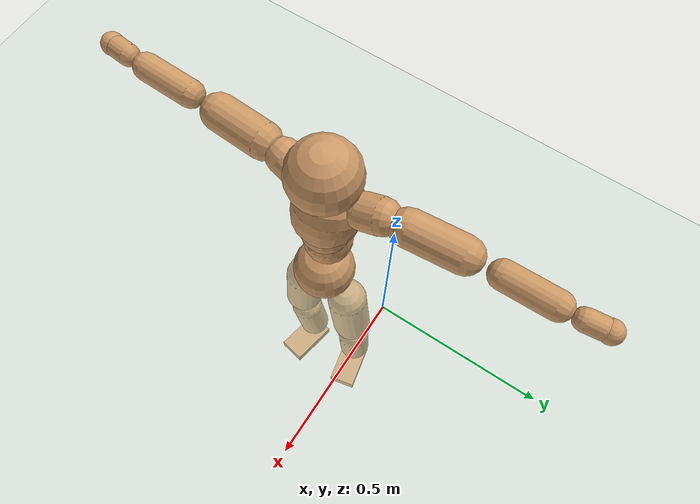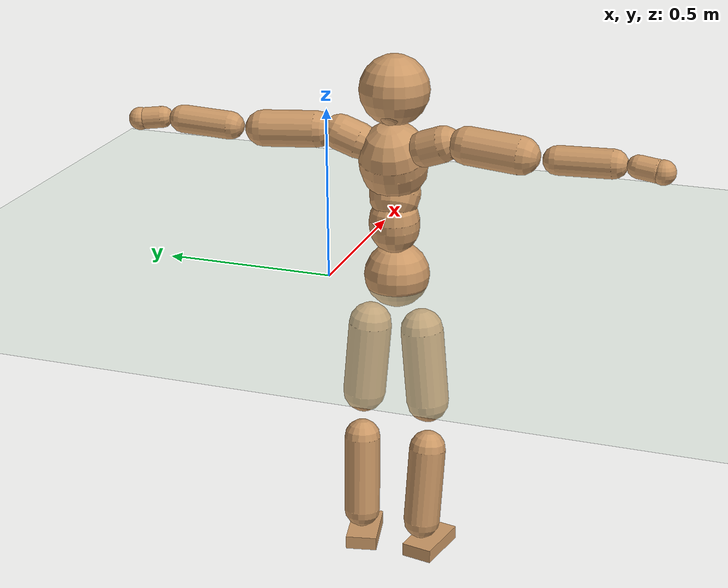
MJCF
<mujoco model="humanoid">
  <compiler coordinate="local"/>
  <default>
    <joint damping="0.0" armature="0.01" stiffness="0.0" limited="true"/>
    <geom conaffinity="1" condim="3" contype="7" margin="0.001" rgba="0.8 0.6 .4 1"/>
  </default>
  <asset>
    <texture type="skybox" builtin="gradient" rgb1=".4 .5 .6" rgb2="0 0 0" width="100" height="100"/>
    <texture builtin="flat" height="1278" mark="cross" markrgb="1 1 1" name="texgeom" random="0.01" rgb1="0.8 0.6 0.4" rgb2="0.8 0.6 0.4" type="cube" width="127"/>
    <texture builtin="checker" height="100" name="texplane" rgb1="0 0 0" rgb2="0.8 0.8 0.8" type="2d" width="100"/>
    <material name="MatPlane" reflectance="0.5" shininess="1" specular="1" texrepeat="60 60" texture="texplane"/>
    <material name="geom" texture="texgeom" texuniform="true"/>
  </asset>
  <worldbody>
    <light cutoff="100" diffuse="1 1 1" dir="-0 0 -1.3" directional="true" exponent="1" pos="0 0 1.3" specular=".1 .1 .1"/>
    <geom conaffinity="1" condim="3" name="floor" pos="0 0 0" rgba="0.8 0.9 0.8 1" size="100 100 .2" type="plane" material="MatPlane"/>
    <body name="Pelvis" pos="0.0009 -0.2075 0.0335">
      <freejoint name="Pelvis"/>
      <geom type="sphere" contype="1" conaffinity="1" density="500" size="0.0940" pos="0.0000 0.0000 0.0000" name="Pelvis"/>
      <body name="L_Hip" pos="-0.0052 0.0729 -0.0884">
        <joint name="L_Hip_x" type="hinge" pos="0 0 0" axis="1 0 0" stiffness="800" damping="80" armature="0.02" range="-180.0000 180.0000"/>
        <joint name="L_Hip_y" type="hinge" pos="0 0 0" axis="0 1 0" stiffness="800" damping="80" armature="0.02" range="-180.0000 180.0000"/>
        <joint name="L_Hip_z" type="hinge" pos="0 0 0" axis="0 0 1" stiffness="800" damping="80" armature="0.02" range="-180.0000 180.0000"/>
        <geom type="capsule" contype="1" conaffinity="1" density="500" fromto="-0.0016 0.0060 -0.0724 -0.0065 0.0239 -0.2895" size="0.0624" name="L_Hip"/>
        <body name="L_Knee" pos="-0.0081 0.0298 -0.3619">
          <joint name="L_Knee_x" type="hinge" pos="0 0 0" axis="1 0 0" stiffness="800" damping="80" armature="0.02" range="-180.0000 180.0000"/>
          <joint name="L_Knee_y" type="hinge" pos="0 0 0" axis="0 1 0" stiffness="800" damping="80" armature="0.02" range="-180.0000 180.0000"/>
          <joint name="L_Knee_z" type="hinge" pos="0 0 0" axis="0 0 1" stiffness="800" damping="80" armature="0.02" range="-180.0000 180.0000"/>
          <geom type="capsule" contype="1" conaffinity="1" density="500" fromto="-0.0087 -0.0023 -0.0763 -0.0347 -0.0091 -0.3052" size="0.0536" name="L_Knee"/>
          <body name="L_Ankle" pos="-0.0434 -0.0114 -0.3815">
            <joint name="L_Ankle_x" type="hinge" pos="0 0 0" axis="1 0 0" stiffness="800" damping="80" armature="0.02" range="-180.0000 180.0000"/>
            <joint name="L_Ankle_y" type="hinge" pos="0 0 0" axis="0 1 0" stiffness="800" damping="80" armature="0.02" range="-180.0000 180.0000"/>
            <joint name="L_Ankle_z" type="hinge" pos="0 0 0" axis="0 0 1" stiffness="800" damping="80" armature="0.02" range="-180.0000 180.0000"/>
            <geom type="box" contype="1" conaffinity="1" density="500" pos="0.0577 0.0118 -0.0274" size="0.0835 0.0459 0.02" quat="0.9949 0.0000 0.0000 0.1008" name="L_Ankle"/>
            <body name="L_Toe" pos="0.1155 0.0236 -0.0548">
              <joint name="L_Toe_x" type="hinge" pos="0 0 0" axis="1 0 0" stiffness="500" damping="50" armature="0.02" range="-180.0000 180.0000"/>
              <joint name="L_Toe_y" type="hinge" pos="0 0 0" axis="0 1 0" stiffness="500" damping="50" armature="0.02" range="-180.0000 180.0000"/>
              <joint name="L_Toe_z" type="hinge" pos="0 0 0" axis="0 0 1" stiffness="500" damping="50" armature="0.02" range="-180.0000 180.0000"/>
              <geom type="box" contype="1" conaffinity="1" density="500" pos="0.0000 0.0000 0.0269" size="0.0009 0.0023 0.001" quat="0.9942 0.0000 0.0000 0.1072" name="L_Toe"/>
            </body>
          </body>
        </body>
      </body>
      <body name="R_Hip" pos="-0.0024 -0.0705 -0.0876">
        <joint name="R_Hip_x" type="hinge" pos="0 0 0" axis="1 0 0" stiffness="800" damping="80" armature="0.02" range="-180.0000 180.0000"/>
        <joint name="R_Hip_y" type="hinge" pos="0 0 0" axis="0 1 0" stiffness="800" damping="80" armature="0.02" range="-180.0000 180.0000"/>
        <joint name="R_Hip_z" type="hinge" pos="0 0 0" axis="0 0 1" stiffness="800" damping="80" armature="0.02" range="-180.0000 180.0000"/>
        <geom type="capsule" contype="1" conaffinity="1" density="500" fromto="-0.0020 -0.0070 -0.0736 -0.0081 -0.0279 -0.2946" size="0.0617" name="R_Hip"/>
        <body name="R_Knee" pos="-0.0102 -0.0349 -0.3682">
          <joint name="R_Knee_x" type="hinge" pos="0 0 0" axis="1 0 0" stiffness="800" damping="80" armature="0.02" range="-180.0000 180.0000"/>
          <joint name="R_Knee_y" type="hinge" pos="0 0 0" axis="0 1 0" stiffness="800" damping="80" armature="0.02" range="-180.0000 180.0000"/>
          <joint name="R_Knee_z" type="hinge" pos="0 0 0" axis="0 0 1" stiffness="800" damping="80" armature="0.02" range="-180.0000 180.0000"/>
          <geom type="capsule" contype="1" conaffinity="1" density="500" fromto="-0.0085 0.0028 -0.0765 -0.0340 0.0110 -0.3062" size="0.0539" name="R_Knee"/>
          <body name="R_Ankle" pos="-0.0424 0.0138 -0.3827">
            <joint name="R_Ankle_x" type="hinge" pos="0 0 0" axis="1 0 0" stiffness="800" damping="80" armature="0.02" range="-180.0000 180.0000"/>
            <joint name="R_Ankle_y" type="hinge" pos="0 0 0" axis="0 1 0" stiffness="800" damping="80" armature="0.02" range="-180.0000 180.0000"/>
            <joint name="R_Ankle_z" type="hinge" pos="0 0 0" axis="0 0 1" stiffness="800" damping="80" armature="0.02" range="-180.0000 180.0000"/>
            <geom type="box" contype="1" conaffinity="1" density="500" pos="0.0595 -0.0115 -0.0230" size="0.0841 0.0464 0.02" quat="0.9955 0.0000 0.0000 -0.0949" name="R_Ankle"/>
            <body name="R_Toe" pos="0.1191 -0.0229 -0.046">
              <joint name="R_Toe_x" type="hinge" pos="0 0 0" axis="1 0 0" stiffness="500" damping="50" armature="0.02" range="-180.0000 180.0000"/>
              <joint name="R_Toe_y" type="hinge" pos="0 0 0" axis="0 1 0" stiffness="500" damping="50" armature="0.02" range="-180.0000 180.0000"/>
              <joint name="R_Toe_z" type="hinge" pos="0 0 0" axis="0 0 1" stiffness="500" damping="50" armature="0.02" range="-180.0000 180.0000"/>
              <geom type="box" contype="1" conaffinity="1" density="500" pos="0.0000 0.0000 0.0247" size="0.0009 0.0023 0.0011" quat="0.9963 0.0000 0.0000 -0.0854" name="R_Toe"/>
            </body>
          </body>
        </body>
      </body>
      <body name="Torso" pos="-0.025 -0.0023 0.1018">
        <joint name="Torso_x" type="hinge" pos="0 0 0" axis="1 0 0" stiffness="1000" damping="100" armature="0.02" range="-180.0000 180.0000"/>
        <joint name="Torso_y" type="hinge" pos="0 0 0" axis="0 1 0" stiffness="1000" damping="100" armature="0.02" range="-180.0000 180.0000"/>
        <joint name="Torso_z" type="hinge" pos="0 0 0" axis="0 0 1" stiffness="1000" damping="100" armature="0.02" range="-180.0000 180.0000"/>
        <geom type="capsule" contype="1" conaffinity="1" density="500" fromto="-0.0019 0.0015 0.0727 -0.0012 0.0010 0.0484" size="0.0716" name="Torso"/>
        <body name="Spine" pos="-0.0031 0.0026 0.1211">
          <joint name="Spine_x" type="hinge" pos="0 0 0" axis="1 0 0" stiffness="1000" damping="100" armature="0.02" range="-180.0000 180.0000"/>
          <joint name="Spine_y" type="hinge" pos="0 0 0" axis="0 1 0" stiffness="1000" damping="100" armature="0.02" range="-180.0000 180.0000"/>
          <joint name="Spine_z" type="hinge" pos="0 0 0" axis="0 0 1" stiffness="1000" damping="100" armature="0.02" range="-180.0000 180.0000"/>
          <geom type="capsule" contype="1" conaffinity="1" density="500" fromto="0.0160 0.0012 0.0288 0.0107 0.0008 0.0192" size="0.0729" name="Spine"/>
          <body name="Chest" pos="0.0267 0.002 0.0481">
            <joint name="Chest_x" type="hinge" pos="0 0 0" axis="1 0 0" stiffness="1000" damping="100" armature="0.02" range="-180.0000 180.0000"/>
            <joint name="Chest_y" type="hinge" pos="0 0 0" axis="0 1 0" stiffness="1000" damping="100" armature="0.02" range="-180.0000 180.0000"/>
            <joint name="Chest_z" type="hinge" pos="0 0 0" axis="0 0 1" stiffness="1000" damping="100" armature="0.02" range="-180.0000 180.0000"/>
            <geom type="capsule" contype="1" conaffinity="1" density="500" fromto="-0.0279 -0.0004 0.0901 -0.0186 -0.0003 0.0601" size="0.0972" name="Chest"/>
            <body name="Neck" pos="-0.0545 -0.0002 0.2113">
              <joint name="Neck_x" type="hinge" pos="0 0 0" axis="1 0 0" stiffness="500" damping="50" armature="0.02" range="-180.0000 180.0000"/>
              <joint name="Neck_y" type="hinge" pos="0 0 0" axis="0 1 0" stiffness="500" damping="50" armature="0.02" range="-180.0000 180.0000"/>
              <joint name="Neck_z" type="hinge" pos="0 0 0" axis="0 0 1" stiffness="500" damping="50" armature="0.02" range="-180.0000 180.0000"/>
              <geom type="capsule" contype="1" conaffinity="1" density="500" fromto="0.0099 0.0008 0.0117 0.0396 0.0032 0.0468" size="0.0413" name="Neck"/>
              <body name="Head" pos="0.0495 0.004 0.0585">
                <joint name="Head_x" type="hinge" pos="0 0 0" axis="1 0 0" stiffness="500" damping="50" armature="0.02" range="-180.0000 180.0000"/>
                <joint name="Head_y" type="hinge" pos="0 0 0" axis="0 1 0" stiffness="500" damping="50" armature="0.02" range="-180.0000 180.0000"/>
                <joint name="Head_z" type="hinge" pos="0 0 0" axis="0 0 1" stiffness="500" damping="50" armature="0.02" range="-180.0000 180.0000"/>
                <geom type="sphere" contype="1" conaffinity="1" density="500" size="0.0987" pos="0.0000 0.0000 0.0000" name="Head"/>
              </body>
            </body>
            <body name="L_Thorax" pos="-0.0395 0.077 0.1209">
              <joint name="L_Thorax_x" type="hinge" pos="0 0 0" axis="1 0 0" stiffness="500" damping="50" armature="0.02" range="-180.0000 180.0000"/>
              <joint name="L_Thorax_y" type="hinge" pos="0 0 0" axis="0 1 0" stiffness="500" damping="50" armature="0.02" range="-180.0000 180.0000"/>
              <joint name="L_Thorax_z" type="hinge" pos="0 0 0" axis="0 0 1" stiffness="500" damping="50" armature="0.02" range="-180.0000 180.0000"/>
              <geom type="capsule" contype="1" conaffinity="1" density="500" fromto="-0.0013 0.0174 0.0066 -0.0053 0.0697 0.0265" size="0.0509" name="L_Thorax"/>
              <body name="L_Shoulder" pos="-0.0067 0.0871 0.0331">
                <joint name="L_Shoulder_x" type="hinge" pos="0 0 0" axis="1 0 0" stiffness="500" damping="50" armature="0.02" range="-720.0000 720.0000"/>
                <joint name="L_Shoulder_y" type="hinge" pos="0 0 0" axis="0 1 0" stiffness="500" damping="50" armature="0.02" range="-720.0000 720.0000"/>
                <joint name="L_Shoulder_z" type="hinge" pos="0 0 0" axis="0 0 1" stiffness="500" damping="50" armature="0.02" range="-720.0000 720.0000"/>
                <geom type="capsule" contype="1" conaffinity="1" density="500" fromto="-0.0054 0.0504 -0.0023 -0.0214 0.2016 -0.0092" size="0.0514" name="L_Shoulder"/>
                <body name="L_Elbow" pos="-0.0268 0.252 -0.0115">
                  <joint name="L_Elbow_x" type="hinge" pos="0 0 0" axis="1 0 0" stiffness="500" damping="50" armature="0.02" range="-720.0000 720.0000"/>
                  <joint name="L_Elbow_y" type="hinge" pos="0 0 0" axis="0 1 0" stiffness="500" damping="50" armature="0.02" range="-720.0000 720.0000"/>
                  <joint name="L_Elbow_z" type="hinge" pos="0 0 0" axis="0 0 1" stiffness="500" damping="50" armature="0.02" range="-720.0000 720.0000"/>
                  <geom type="capsule" contype="1" conaffinity="1" density="500" fromto="0.0001 0.0480 0.0019 0.0004 0.1919 0.0076" size="0.0395" name="L_Elbow"/>
                  <body name="L_Wrist" pos="0.0005 0.2399 0.0094">
                    <joint name="L_Wrist_x" type="hinge" pos="0 0 0" axis="1 0 0" stiffness="300" damping="30" armature="0.02" range="-180.0000 180.0000"/>
                    <joint name="L_Wrist_y" type="hinge" pos="0 0 0" axis="0 1 0" stiffness="300" damping="30" armature="0.02" range="-180.0000 180.0000"/>
                    <joint name="L_Wrist_z" type="hinge" pos="0 0 0" axis="0 0 1" stiffness="300" damping="30" armature="0.02" range="-180.0000 180.0000"/>
                    <geom type="capsule" contype="1" conaffinity="1" density="500" fromto="-0.0027 0.0161 -0.0019 -0.0107 0.0646 -0.0078" size="0.0306" name="L_Wrist"/>
                    <body name="L_Hand" pos="-0.0134 0.0807 -0.0097">
                      <joint name="L_Hand_x" type="hinge" pos="0 0 0" axis="1 0 0" stiffness="300" damping="30" armature="0.02" range="-180.0000 180.0000"/>
                      <joint name="L_Hand_y" type="hinge" pos="0 0 0" axis="0 1 0" stiffness="300" damping="30" armature="0.02" range="-180.0000 180.0000"/>
                      <joint name="L_Hand_z" type="hinge" pos="0 0 0" axis="0 0 1" stiffness="300" damping="30" armature="0.02" range="-180.0000 180.0000"/>
                      <geom type="sphere" contype="1" conaffinity="1" density="500" size="0.0325" pos="0.0000 0.0000 0.0000" name="L_Hand"/>
                    </body>
                  </body>
                </body>
              </body>
            </body>
            <body name="R_Thorax" pos="-0.0454 -0.0789 0.1182">
              <joint name="R_Thorax_x" type="hinge" pos="0 0 0" axis="1 0 0" stiffness="500" damping="50" armature="0.02" range="-180.0000 180.0000"/>
              <joint name="R_Thorax_y" type="hinge" pos="0 0 0" axis="0 1 0" stiffness="500" damping="50" armature="0.02" range="-180.0000 180.0000"/>
              <joint name="R_Thorax_z" type="hinge" pos="0 0 0" axis="0 0 1" stiffness="500" damping="50" armature="0.02" range="-180.0000 180.0000"/>
              <geom type="capsule" contype="1" conaffinity="1" density="500" fromto="-0.0022 -0.0185 0.0069 -0.0086 -0.0739 0.0277" size="0.0503" name="R_Thorax"/>
              <body name="R_Shoulder" pos="-0.0108 -0.0924 0.0346">
                <joint name="R_Shoulder_x" type="hinge" pos="0 0 0" axis="1 0 0" stiffness="500" damping="50" armature="0.02" range="-720.0000 720.0000"/>
                <joint name="R_Shoulder_y" type="hinge" pos="0 0 0" axis="0 1 0" stiffness="500" damping="50" armature="0.02" range="-720.0000 720.0000"/>
                <joint name="R_Shoulder_z" type="hinge" pos="0 0 0" axis="0 0 1" stiffness="500" damping="50" armature="0.02" range="-720.0000 720.0000"/>
                <geom type="capsule" contype="1" conaffinity="1" density="500" fromto="-0.0041 -0.0503 -0.0029 -0.0164 -0.2012 -0.0114" size="0.053" name="R_Shoulder"/>
                <body name="R_Elbow" pos="-0.0204 -0.2515 -0.0143">
                  <joint name="R_Elbow_x" type="hinge" pos="0 0 0" axis="1 0 0" stiffness="500" damping="50" armature="0.02" range="-720.0000 720.0000"/>
                  <joint name="R_Elbow_y" type="hinge" pos="0 0 0" axis="0 1 0" stiffness="500" damping="50" armature="0.02" range="-720.0000 720.0000"/>
                  <joint name="R_Elbow_z" type="hinge" pos="0 0 0" axis="0 0 1" stiffness="500" damping="50" armature="0.02" range="-720.0000 720.0000"/>
                  <geom type="capsule" contype="1" conaffinity="1" density="500" fromto="-0.0006 -0.0499 0.0018 -0.0025 -0.1998 0.0074" size="0.0398" name="R_Elbow"/>
                  <body name="R_Wrist" pos="-0.0032 -0.2497 0.0092">
                    <joint name="R_Wrist_x" type="hinge" pos="0 0 0" axis="1 0 0" stiffness="300" damping="30" armature="0.02" range="-180.0000 180.0000"/>
                    <joint name="R_Wrist_y" type="hinge" pos="0 0 0" axis="0 1 0" stiffness="300" damping="30" armature="0.02" range="-180.0000 180.0000"/>
                    <joint name="R_Wrist_z" type="hinge" pos="0 0 0" axis="0 0 1" stiffness="300" damping="30" armature="0.02" range="-180.0000 180.0000"/>
                    <geom type="capsule" contype="1" conaffinity="1" density="500" fromto="-0.0022 -0.0166 -0.0015 -0.0087 -0.0665 -0.0060" size="0.0318" name="R_Wrist"/>
                    <body name="R_Hand" pos="-0.0108 -0.0831 -0.0075">
                      <joint name="R_Hand_x" type="hinge" pos="0 0 0" axis="1 0 0" stiffness="300" damping="30" armature="0.02" range="-180.0000 180.0000"/>
                      <joint name="R_Hand_y" type="hinge" pos="0 0 0" axis="0 1 0" stiffness="300" damping="30" armature="0.02" range="-180.0000 180.0000"/>
                      <joint name="R_Hand_z" type="hinge" pos="0 0 0" axis="0 0 1" stiffness="300" damping="30" armature="0.02" range="-180.0000 180.0000"/>
                      <geom type="sphere" contype="1" conaffinity="1" density="500" size="0.0334" pos="0.0000 0.0000 0.0000" name="R_Hand"/>
                    </body>
                  </body>
                </body>
              </body>
            </body>
          </body>
        </body>
      </body>
    </body>
  </worldbody>
  <actuator>
    <motor name="L_Hip_x" joint="L_Hip_x" gear="500"/>
    <motor name="L_Hip_y" joint="L_Hip_y" gear="500"/>
    <motor name="L_Hip_z" joint="L_Hip_z" gear="500"/>
    <motor name="L_Knee_x" joint="L_Knee_x" gear="500"/>
    <motor name="L_Knee_y" joint="L_Knee_y" gear="500"/>
    <motor name="L_Knee_z" joint="L_Knee_z" gear="500"/>
    <motor name="L_Ankle_x" joint="L_Ankle_x" gear="500"/>
    <motor name="L_Ankle_y" joint="L_Ankle_y" gear="500"/>
    <motor name="L_Ankle_z" joint="L_Ankle_z" gear="500"/>
    <motor name="L_Toe_x" joint="L_Toe_x" gear="500"/>
    <motor name="L_Toe_y" joint="L_Toe_y" gear="500"/>
    <motor name="L_Toe_z" joint="L_Toe_z" gear="500"/>
    <motor name="R_Hip_x" joint="R_Hip_x" gear="500"/>
    <motor name="R_Hip_y" joint="R_Hip_y" gear="500"/>
    <motor name="R_Hip_z" joint="R_Hip_z" gear="500"/>
    <motor name="R_Knee_x" joint="R_Knee_x" gear="500"/>
    <motor name="R_Knee_y" joint="R_Knee_y" gear="500"/>
    <motor name="R_Knee_z" joint="R_Knee_z" gear="500"/>
    <motor name="R_Ankle_x" joint="R_Ankle_x" gear="500"/>
    <motor name="R_Ankle_y" joint="R_Ankle_y" gear="500"/>
    <motor name="R_Ankle_z" joint="R_Ankle_z" gear="500"/>
    <motor name="R_Toe_x" joint="R_Toe_x" gear="500"/>
    <motor name="R_Toe_y" joint="R_Toe_y" gear="500"/>
    <motor name="R_Toe_z" joint="R_Toe_z" gear="500"/>
    <motor name="Torso_x" joint="Torso_x" gear="500"/>
    <motor name="Torso_y" joint="Torso_y" gear="500"/>
    <motor name="Torso_z" joint="Torso_z" gear="500"/>
    <motor name="Spine_x" joint="Spine_x" gear="500"/>
    <motor name="Spine_y" joint="Spine_y" gear="500"/>
    <motor name="Spine_z" joint="Spine_z" gear="500"/>
    <motor name="Chest_x" joint="Chest_x" gear="500"/>
    <motor name="Chest_y" joint="Chest_y" gear="500"/>
    <motor name="Chest_z" joint="Chest_z" gear="500"/>
    <motor name="Neck_x" joint="Neck_x" gear="500"/>
    <motor name="Neck_y" joint="Neck_y" gear="500"/>
    <motor name="Neck_z" joint="Neck_z" gear="500"/>
    <motor name="Head_x" joint="Head_x" gear="500"/>
    <motor name="Head_y" joint="Head_y" gear="500"/>
    <motor name="Head_z" joint="Head_z" gear="500"/>
    <motor name="L_Thorax_x" joint="L_Thorax_x" gear="500"/>
    <motor name="L_Thorax_y" joint="L_Thorax_y" gear="500"/>
    <motor name="L_Thorax_z" joint="L_Thorax_z" gear="500"/>
    <motor name="L_Shoulder_x" joint="L_Shoulder_x" gear="500"/>
    <motor name="L_Shoulder_y" joint="L_Shoulder_y" gear="500"/>
    <motor name="L_Shoulder_z" joint="L_Shoulder_z" gear="500"/>
    <motor name="L_Elbow_x" joint="L_Elbow_x" gear="500"/>
    <motor name="L_Elbow_y" joint="L_Elbow_y" gear="500"/>
    <motor name="L_Elbow_z" joint="L_Elbow_z" gear="500"/>
    <motor name="L_Wrist_x" joint="L_Wrist_x" gear="500"/>
    <motor name="L_Wrist_y" joint="L_Wrist_y" gear="500"/>
    <motor name="L_Wrist_z" joint="L_Wrist_z" gear="500"/>
    <motor name="L_Hand_x" joint="L_Hand_x" gear="500"/>
    <motor name="L_Hand_y" joint="L_Hand_y" gear="500"/>
    <motor name="L_Hand_z" joint="L_Hand_z" gear="500"/>
    <motor name="R_Thorax_x" joint="R_Thorax_x" gear="500"/>
    <motor name="R_Thorax_y" joint="R_Thorax_y" gear="500"/>
    <motor name="R_Thorax_z" joint="R_Thorax_z" gear="500"/>
    <motor name="R_Shoulder_x" joint="R_Shoulder_x" gear="500"/>
    <motor name="R_Shoulder_y" joint="R_Shoulder_y" gear="500"/>
    <motor name="R_Shoulder_z" joint="R_Shoulder_z" gear="500"/>
    <motor name="R_Elbow_x" joint="R_Elbow_x" gear="500"/>
    <motor name="R_Elbow_y" joint="R_Elbow_y" gear="500"/>
    <motor name="R_Elbow_z" joint="R_Elbow_z" gear="500"/>
    <motor name="R_Wrist_x" joint="R_Wrist_x" gear="500"/>
    <motor name="R_Wrist_y" joint="R_Wrist_y" gear="500"/>
    <motor name="R_Wrist_z" joint="R_Wrist_z" gear="500"/>
    <motor name="R_Hand_x" joint="R_Hand_x" gear="500"/>
    <motor name="R_Hand_y" joint="R_Hand_y" gear="500"/>
    <motor name="R_Hand_z" joint="R_Hand_z" gear="500"/>
  </actuator>
  <contact>
    <exclude body1="Torso" body2="Chest"/>
    <exclude body1="Head" body2="Chest"/>
    <exclude body1="R_Knee" body2="R_Toe"/>
    <exclude body1="R_Knee" body2="L_Ankle"/>
    <exclude body1="R_Knee" body2="L_Toe"/>
    <exclude body1="L_Knee" body2="L_Toe"/>
    <exclude body1="L_Knee" body2="R_Ankle"/>
    <exclude body1="L_Knee" body2="R_Toe"/>
    <exclude body1="L_Shoulder" body2="Chest"/>
    <exclude body1="R_Shoulder" body2="Chest"/>
  </contact>
  <sensor/>
  <size njmax="700" nconmax="700"/>
</mujoco>
